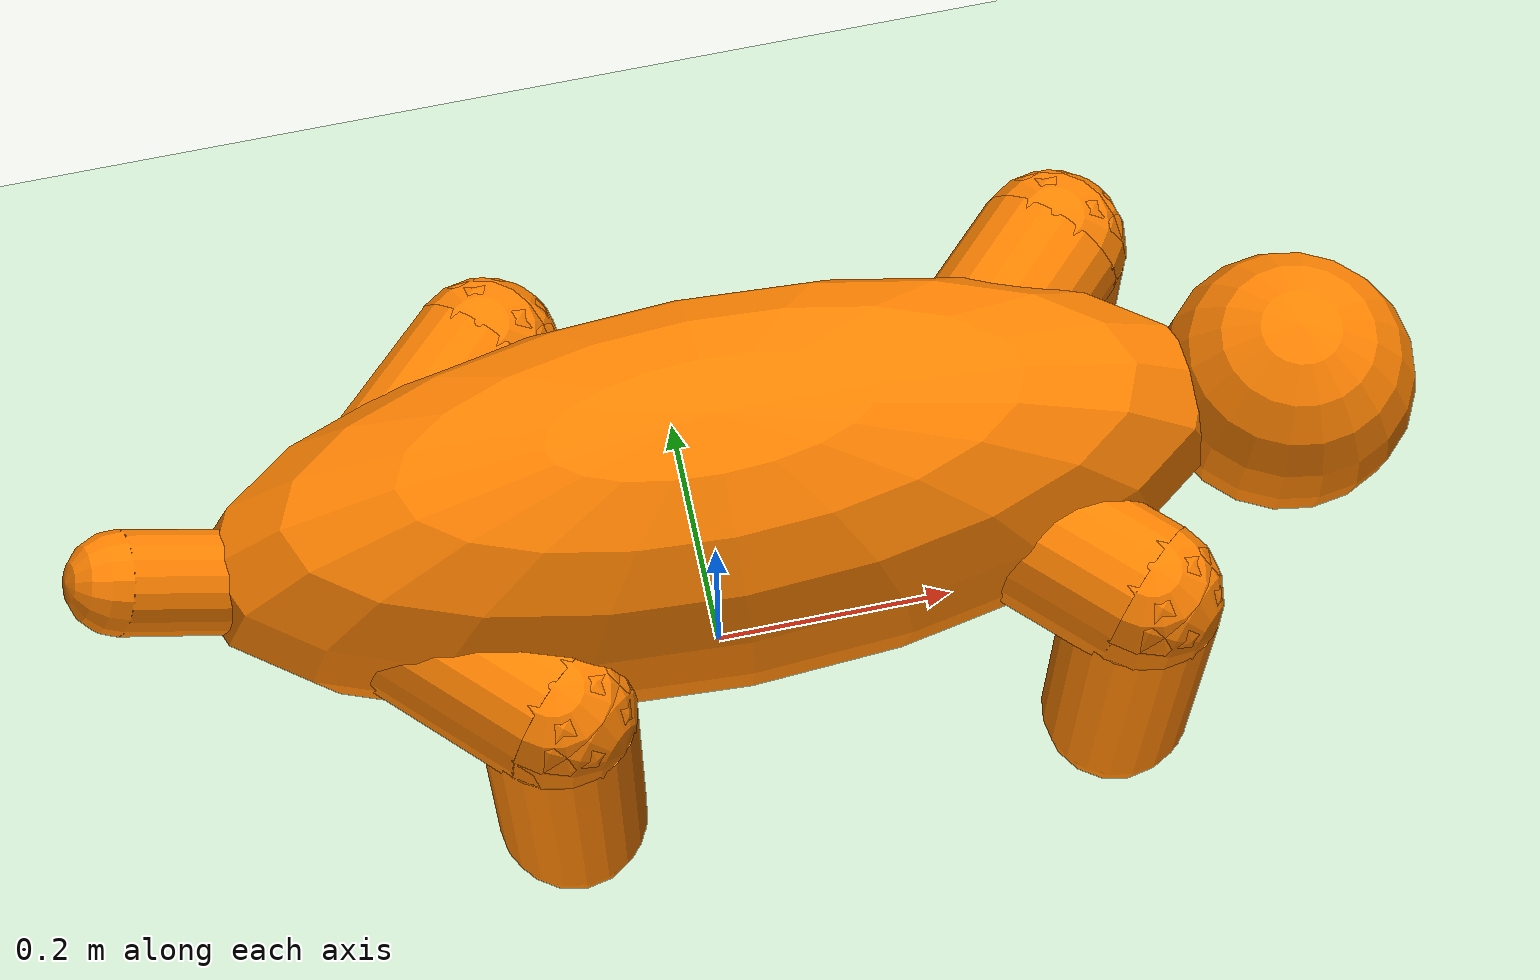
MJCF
<mujoco model="dog">
  <compiler angle="degree" coordinate="local" inertiafromgeom="true"/>
  <option integrator="RK4" timestep="0.01"/>
  <custom>
    <numeric data="0.0 0.0 0.55 1.0 0.0 0.0 0.0 0.0 1.0 0.0 -1.0 0.0 -1.0 0.0 1.0" name="init_qpos"/>
  </custom>
  <default>
    <joint armature="1" damping="1" limited="true"/>
    <geom conaffinity="0" condim="3" density="5.0" friction="1 0.5 0.5" margin="0.01" rgba="1 0.51 0 1"/>
  </default>
  <asset>
    <texture builtin="gradient" height="100" rgb1="1 1 1" rgb2="0 0 0" type="skybox" width="100"/>
    <texture builtin="flat" height="1278" mark="cross" markrgb="1 1 1" name="texgeom" random="0.01" rgb1="0.8 0.6 0.4" rgb2="0.8 0.6 0.4" type="cube" width="127"/>
    <texture builtin="checker" height="100" name="texplane" rgb1="0 0 0" rgb2="0.8 0.8 0.8" type="2d" width="100"/>
    <material name="MatPlane" reflectance="0.5" shininess="1" specular="1" texrepeat="60 60" texture="texplane"/>
    <material name="geom" texture="texgeom" texuniform="true"/>
  </asset>
  <worldbody>
    <light cutoff="100" diffuse="1 1 1" dir="-0 0 -1.3" directional="true" exponent="1" pos="0 0 0.5" specular=".1 .1 .1"/>
    <geom conaffinity="1" condim="3" material="MatPlane" name="floor" pos="0 0 0" rgba="0.8 0.9 0.8 1" size="40 40 40" type="plane"/>
    <body name="torso" pos="0 0 0.32">
      <camera name="track" mode="trackcom" pos="0 -3 0.3" xyaxes="1 0 0 0 0 1"/>
      <geom name="torso_geom" pos="0 0 0" type="ellipsoid" size="0.4 0.15 0.15"/>
      <joint armature="0" damping="0" limited="false" margin="0.01" name="root" pos="0 0 0" type="free"/>
      <body name="head" pos = "0.45 0 0">
        <joint axis="0 0 1" name="neck" pos="0.0 0.0 0" range="0 30" type="hinge"/>
        <geom name="head" type="sphere" size="0.1" pos="0 0 0"/>
      </body>
      <body name="tail" pos = "-0.35 0 0">
        <geom fromto="0.0 0.0 0.0 -0.1 0.0 0.05" name="tail" size="0.04" type="capsule"/>
      </body>
      <body name="front_left_leg" pos="0.2 0.05 0">

          <joint axis="0 1 1" name="hip_1" pos="0.0 0.0 0" range="-30 30" type="hinge"/>
          <geom fromto="0.0 0.0 0.0 0.1 0.1 0.0" name="left_leg_geom" size="0.06" type="capsule"/>
          <body pos="0.1 0.1 0.0">
            <joint axis="-1 1 0" name="ankle_1" pos="0.0 0.0 0.0" range="0 30" type="hinge"/>
            <geom fromto="0.0 0.0 0.0 0.0 0.0 -0.25" name="left_ankle_geom" size="0.06" type="capsule"/>
          </body>

      </body>

      <body name="back_left_leg" pos="-0.25 0.05 0">

          <joint axis="0 1 1" name="hip_2" pos="0.0 0.0 0.0" range="-30 30" type="hinge"/>
          <geom fromto="0.0 0.0 0.0 0.1 0.1 0.0" name="right_leg_geom" size="0.06" type="capsule"/>
          <body pos="0.1 0.1 0.0">
            <joint axis="-1 1 0" name="ankle_2" pos="0.0 0.0 0.0" range="0 30" type="hinge"/>
            <geom fromto="0.0 0.0 0.0 0.0 0.0 -0.25" name="right_ankle_geom" size="0.06" type="capsule"/>
          </body>

      </body>

      <body name="front_right_leg" pos="0.2 -0.05 0.0">

          <joint axis="0 1 1" name="hip_3" pos="0.0 0.0 0.0" range="-30 30" type="hinge"/>
          <geom fromto="0.0 0.0 0.0 0.1 -0.1 0.0" name="back_leg_geom" size="0.06" type="capsule"/>
          <body pos="0.1 -0.1 0.0">
            <joint axis="1 1 0" name="ankle_3" pos="0.0 0.0 0.0" range="0 30" type="hinge"/>
            <geom fromto="0.0 0.0 0.0 0.0 0.0 -0.25" name="third_ankle_geom" size="0.06" type="capsule"/>
          </body>

      </body>

      <body name="back_right_leg" pos="-0.25 -0.05 0.0">

          <joint axis="0 1 1" name="hip_4" pos="0.0 0.0 0.0" range="-30 30" type="hinge"/>
          <geom fromto="0.0 0.0 0.0 0.1 -0.1 0.0" name="rightback_leg_geom" size="0.06" type="capsule"/>
          <body pos="0.1 -0.1 0.0">
            <joint axis="1 1 0" name="ankle_4" pos="0.0 0.0 0.0" range="0 30" type="hinge"/>
            <geom fromto="0.0 0.0 0.0 0.0 0.0 -0.25" name="fourth_ankle_geom" size="0.06" type="capsule"/>
          </body>

      </body>

    </body>

  </worldbody>
  <actuator>
    <motor ctrllimited="true" ctrlrange="-1.0 1.0" joint="hip_4" gear="100"/>
    <motor ctrllimited="true" ctrlrange="-1.0 1.0" joint="ankle_4" gear="100"/>
    <motor ctrllimited="true" ctrlrange="-1.0 1.0" joint="hip_1" gear="100"/>
    <motor ctrllimited="true" ctrlrange="-1.0 1.0" joint="ankle_1" gear="100"/>
    <motor ctrllimited="true" ctrlrange="-1.0 1.0" joint="hip_2" gear="100"/>
    <motor ctrllimited="true" ctrlrange="-1.0 1.0" joint="ankle_2" gear="100"/>
    <motor ctrllimited="true" ctrlrange="-1.0 1.0" joint="hip_3" gear="100"/>
    <motor ctrllimited="true" ctrlrange="-1.0 1.0" joint="ankle_3" gear="100"/>
  </actuator>
</mujoco>
